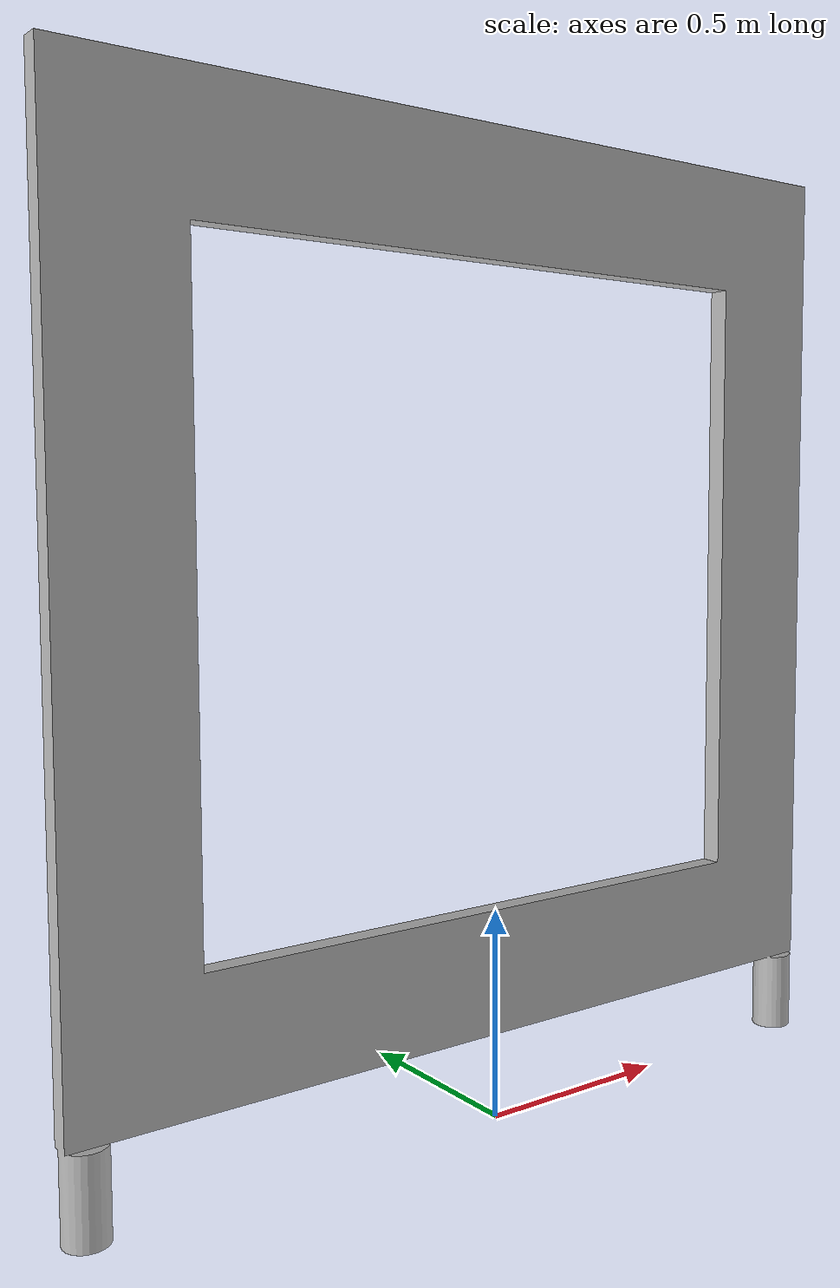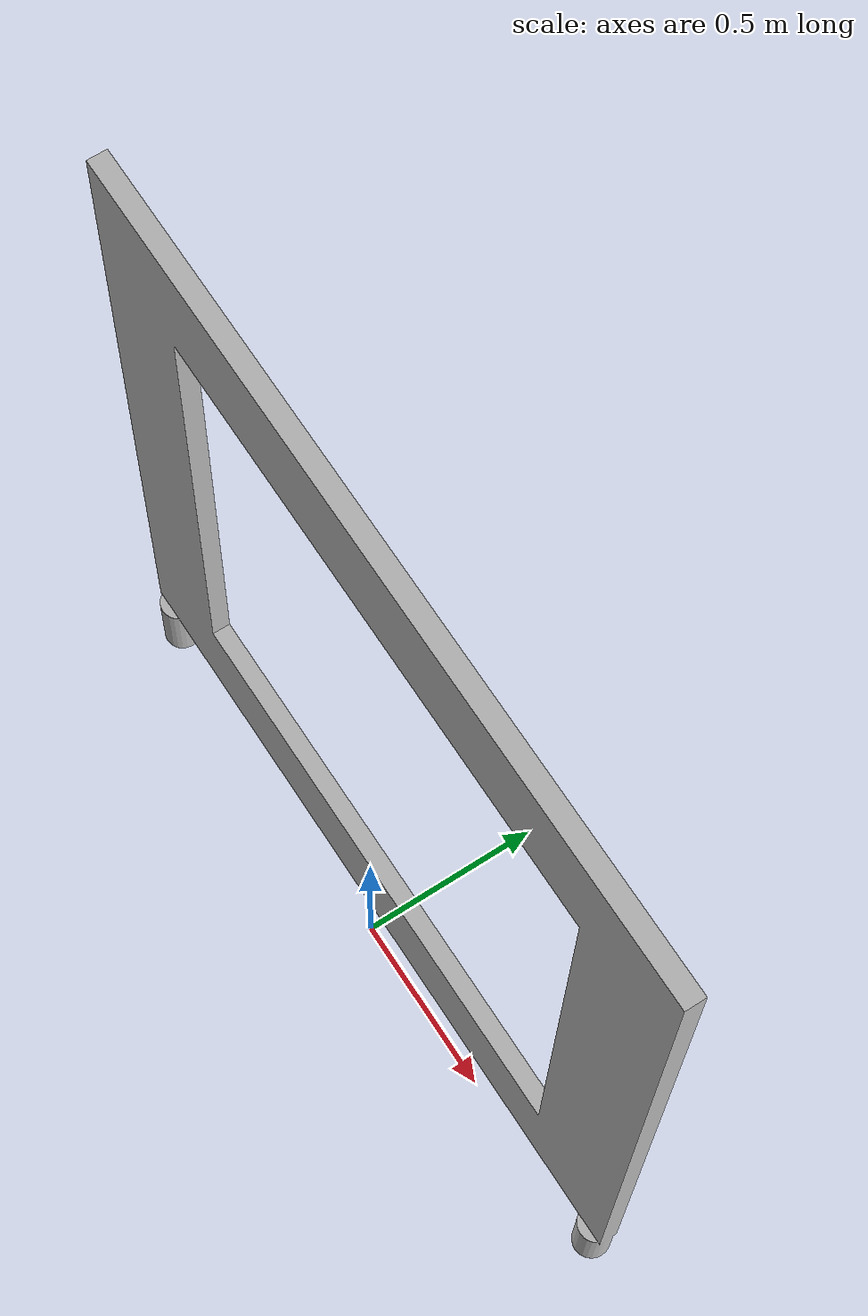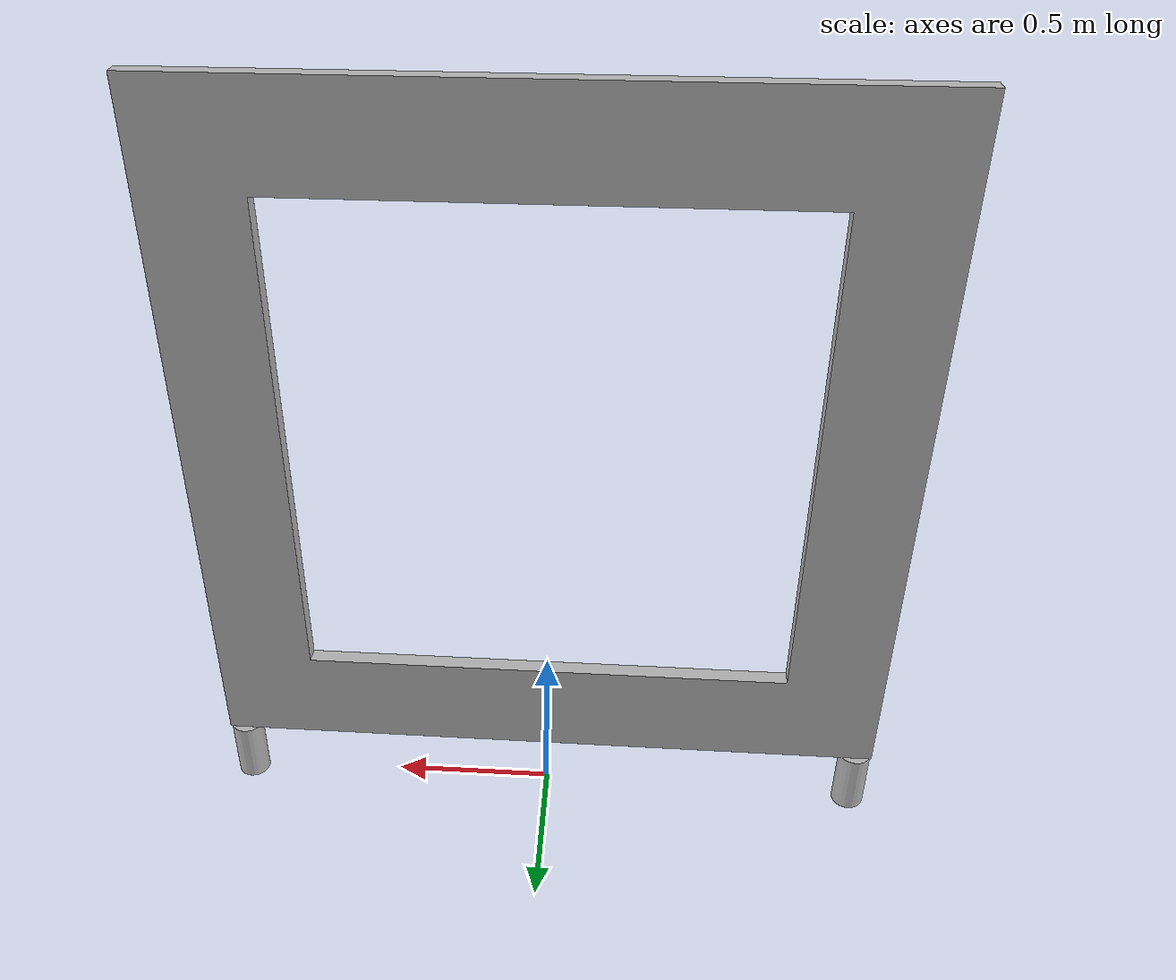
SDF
<?xml version="1.0" ?>
<sdf version="1.6">
  <model name="mav_gate">
    <static>true</static>
    <link name="link">
    <pose>0 0 1.25 -1.5708 0 0</pose>
      <collision name="collision">
        <geometry>
          <mesh>
            <scale>0.01 0.01 0.01</scale>
            <uri>model://mavgate/meshes/gate_png.dae</uri>
          </mesh>
        </geometry>
      </collision>
      <visual name="visual">
        <geometry>
          <mesh>
            <scale>0.01 0.01 0.01</scale>
            <uri>model://mavgate/meshes/gate_png.dae</uri>
          </mesh>
        </geometry>
      </visual>
    </link>
  </model>
</sdf>
